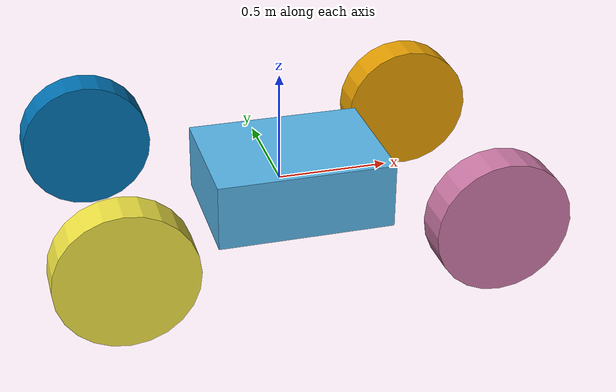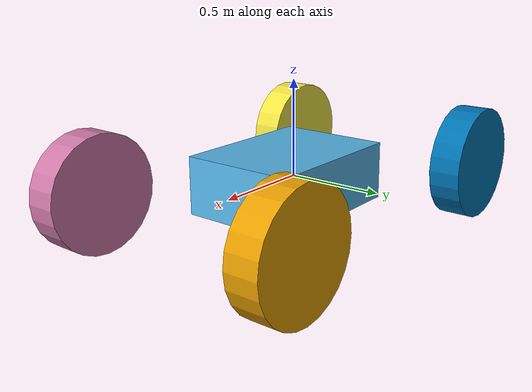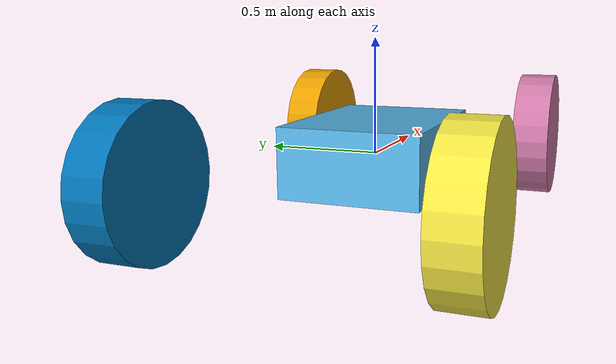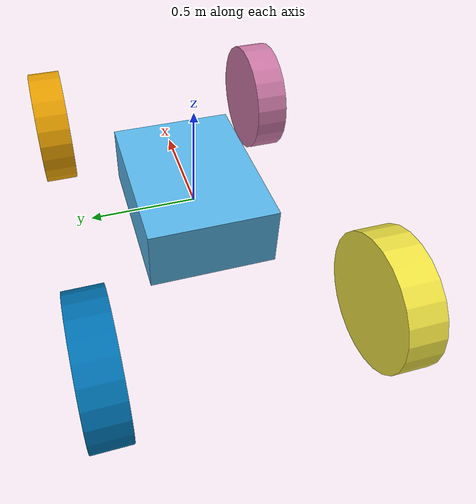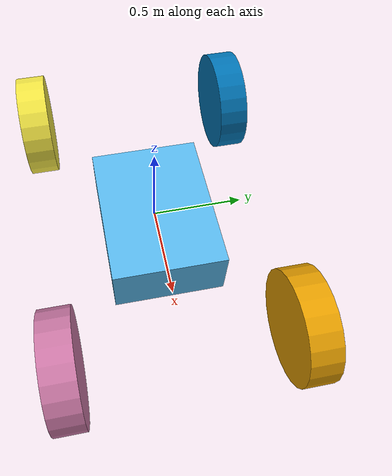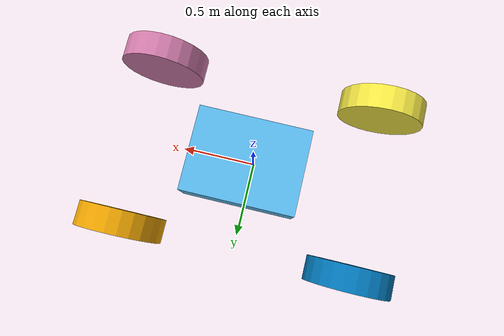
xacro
<!--
    使用 xacro 优化 URDF 版的小车底盘实现：

    实现思路:
    1.将一些常量、变量封装为 xacro:property
      比如:PI 值、小车底盘半径、离地间距、车轮半径、宽度 ....
    2.使用 宏 封装驱动轮以及支撑轮实现，调用相关宏生成驱动轮与支撑轮

-->

<!-- 根标签，必须声明 xmlns:xacro -->

<robot name="$(arg robot_name)" xmlns:xacro="http://www.ros.org/wiki/xacro">
    <!-- 封装变量、常量 -->
    <xacro:property name="PI" value="3.141"/>
    <!-- 宏:黑色设置 -->
    <material name="black">
        <color rgba="0.0 0.0 0.0 1.0" />
    </material>
    <material name="gray">
        <color rgba="0.0 0.0 0.0 0.5" />
    </material>

  <xacro:property name="PI" value="3.1415926835897931"/>

  <!-- base -->
  <xacro:property name="base_link_length" value="0.8"/>
  <xacro:property name="base_link_width" value="0.6"/>
  <xacro:property name="base_link_height" value="0.3"/>
  <xacro:property name="base_collision_height" value="0.0"/>
  <xacro:property name="base_mass" value="0.5"/>
  <xacro:property name="base_mass_ixx" value="343"/>
  <xacro:property name="base_mass_iyy" value="728"/>
  <xacro:property name="base_mass_izz" value="772"/>

  <!-- rear tyre -->
  <xacro:property name="rear_tyre_x" value="0.8"/>
  <xacro:property name="rear_tyre_y" value="0.6"/>
  <xacro:property name="rear_tyre_r" value="0.3"/>
  <xacro:property name="rear_tyre_length" value="0.165"/>
  <xacro:property name="rear_tyre_mass" value="20"/>
  <xacro:property name="rear_tyre_mass_ixx" value="0.5"/>
  <xacro:property name="rear_tyre_mass_iyy" value="0.9"/>
  <xacro:property name="rear_tyre_mass_izz" value="0.5"/>

  <!-- front tyre -->
  <xacro:property name="front_tyre_x" value="0.8"/>
  <xacro:property name="front_tyre_y" value="0.6"/>
  <xacro:property name="front_tyre_r" value="0.3"/>
  <xacro:property name="front_tyre_length" value="0.165"/>
  <xacro:property name="front_tyre_mass" value="20"/>
  <xacro:property name="front_tyre_mass_ixx" value="0.5"/>
  <xacro:property name="front_tyre_mass_iyy" value="0.9"/>
  <xacro:property name="front_tyre_mass_izz" value="0.5"/>

  <!-- steering -->
  <xacro:property name="str_angle" value="0.6"/>
  <xacro:property name="str_length" value="0.01"/>
  <xacro:property name="str_radius" value="0.1"/>
  <xacro:property name="str_mass" value="5"/>
  <xacro:property name="str_mass_ixx" value="0.012"/>
  <xacro:property name="str_mass_iyy" value="0.025"/>
  <xacro:property name="str_mass_izz" value="0.012"/>

<!--Car Body-->
  <link name="base_footprint">
    <visual>
      <origin xyz="0.0 0.0 0.0" rpy="0 0 0"/>
      <geometry>
        <sphere radius="0.05"/>
      </geometry>
    </visual>
  </link >

  <joint name="baselink2footprint" type="fixed">
    <parent link="base_footprint"/>
    <child link="base_link"/>
    <origin xyz="0 0 ${base_collision_height}" rpy="0 0 0"/>
  </joint>

  <link name="base_link">
    <collision>
      <origin xyz="0 0 ${base_collision_height}" rpy="0 0 0"/>
      <geometry>
        <box size="${base_link_length} ${base_link_width} ${base_link_height}"/>
      </geometry>
    </collision>

    <visual>
      <origin xyz="0.05 0 ${base_collision_height}" rpy="0 0 0"/>
      <geometry>
        <box size="${base_link_length} ${base_link_width} ${base_link_height}"/>
      </geometry>
    </visual>
  </link>

  <joint name="inertial_joint" type="fixed">
    <parent link="base_link"/>
    <child link="main_mass"/>
    <origin xyz="0 0 0" rpy="0 0 0"/>
  </joint>

  <link name="main_mass" type="fixed">
    <inertial>
      <origin xyz="0 0 0" rpy="0 0 0"/>
      <mass value="${base_mass}"/>
      <inertia
        ixx="${base_mass_ixx}"  ixy="0.000000"  ixz="0.000000"
        iyy="${base_mass_iyy}"  iyz="0.000000"
        izz="${base_mass_izz}"/>
    </inertial>
  </link>

  <!--Rear Right Wheel-->
  <joint name="right_back_wheel_joint" type="continuous">
    <parent link="base_link"/>
    <child link="right_back_wheel_link"/>
    <origin xyz="${-rear_tyre_x} ${-rear_tyre_y} 0" rpy="0 0 0"/>
    <axis xyz="0 1 0"/>
    <dynamics damping="0.1"/>
    <limit effort="100000" velocity="10000" />
    <joint_properties damping="0.0" friction="0.0" />
  </joint>

  <link name="right_back_wheel_link">
    <collision>
      <origin xyz="0 0 0" rpy="${PI/2} 0 0"/>
      <geometry>
        <cylinder length="${rear_tyre_length}" radius="${rear_tyre_r}"/>
      </geometry>
    </collision>

    <visual>
      <origin xyz="0 0 0" rpy="${PI/2} 0 0"/>
      <geometry>
        <cylinder length="${rear_tyre_length}" radius="${rear_tyre_r}"/>
      </geometry>
    </visual>
     <xacro:cylinder_inertial_matrix m="${rear_tyre_mass}" r="${rear_tyre_r}" h="${rear_tyre_length}" />
  </link>

  <!--Rear Left Wheel-->
  <joint name="left_back_wheel_joint" type="continuous">
    <parent link="base_link"/>
    <child link="left_back_wheel_link"/>
    <origin xyz="${-rear_tyre_x} ${rear_tyre_y} 0" rpy="0 0 0"/>
    <axis xyz="0 1 0"/>
    <dynamics damping="0.1"/>
    <limit effort="100000" velocity="10000" />
    <joint_properties damping="0.0" friction="0.0" />
  </joint>

  <link name="left_back_wheel_link">
    <collision>
      <origin xyz="0 0 0" rpy="${PI/2} 0 0"/>
      <geometry>
        <cylinder length="${rear_tyre_length}" radius="${rear_tyre_r}"/>
      </geometry>
    </collision>

    <visual>
      <origin xyz="0 0 0" rpy="${PI/2} 0 0"/>
      <geometry>
        <cylinder length="${rear_tyre_length}" radius="${rear_tyre_r}"/>
      </geometry>
    </visual>
    <xacro:cylinder_inertial_matrix m="${rear_tyre_mass}" r="${rear_tyre_r}" h="${rear_tyre_length}" />
  </link>

  <!--Front Right Steering-->
  <joint name="right_front_steering_joint" type="revolute">
    <parent link="base_link"/>
    <child link="right_front_steering_link"/>
    <origin xyz="${front_tyre_x} ${-front_tyre_y} 0" rpy="0 0 0"/>
    <axis xyz="0 0 1"/>
    <limit lower="${-str_angle}" upper="${str_angle}" effort="1000000.0" velocity="10000.0"/>
    <dynamics damping="10.0" friction="0.0"/>
  </joint>

  <link name="right_front_steering_link">
    <visual>
      <origin xyz="0 0 0" rpy="${PI/2} 0 0"/>
      <geometry>
        <cylinder length="${str_length}" radius="${str_radius}"/>
      </geometry>
    </visual>
    <xacro:cylinder_inertial_matrix m="${str_mass}" r="${str_radius}" h="${str_length}" />
  </link>

  <!--Front Right Wheel-->
  <joint name="right_front_wheel_joint" type="continuous">
    <parent link="right_front_steering_link"/>
    <child link="right_front_wheel_link"/>
    <origin xyz="0 0 0" rpy="0 0 0"/>
    <axis xyz="0 1 0"/>
    <dynamics damping="0.1"/>
    <limit effort="1000000" velocity="10000" />
    <joint_properties damping="0.0" friction="0.0" />
  </joint>

  <link name="right_front_wheel_link">
    <collision>
      <origin xyz="0 0 0" rpy="${PI/2} 0 0"/>
      <geometry>
        <cylinder length="${front_tyre_length}" radius="${front_tyre_r}"/>
      </geometry>
    </collision>

    <visual>
      <origin xyz="0 0 0" rpy="${PI/2} 0 0"/>
      <geometry>
        <cylinder length="${front_tyre_length}" radius="${front_tyre_r}"/>
      </geometry>
    </visual>
    <xacro:cylinder_inertial_matrix m="${front_tyre_mass}" r="${front_tyre_r}" h="${front_tyre_length}" />
  </link>

  <!--Front Left Steering-->
  <joint name="left_front_steering_joint" type="revolute">
    <parent link="base_link"/>
    <child link="left_front_steering_link"/>
    <origin xyz="${front_tyre_x} ${front_tyre_y} 0" rpy="0 0 0"/>
    <axis xyz="0 0 1"/>
    <limit lower="${-str_angle}" upper="${str_angle}" effort="1000000.0" velocity="10000.0"/>
    <dynamics damping="10.0" friction="0.0"/>
  </joint>

  <link name="left_front_steering_link">

    <visual>
      <origin xyz="0 0 0" rpy="${PI/2} 0 0"/>
      <geometry>
        <cylinder length="${str_length}" radius="${str_radius}"/>
      </geometry>
    </visual>
     <xacro:cylinder_inertial_matrix m="${str_mass}" r="${str_radius}" h="${str_length}" />
  </link>

  <!--Front Left Wheel-->
  <joint name="left_front_wheel_joint" type="continuous">
    <parent link="left_front_steering_link"/>
    <child link="left_front_wheel_link"/>
    <origin xyz="0 0 0" rpy="0 0 0"/>
    <axis xyz="0 1 0"/>
    <dynamics damping="0.1"/>
    <limit effort="1000000" velocity="10000" />
    <joint_properties damping="0.0" friction="0.0" />
  </joint>

  <link name="left_front_wheel_link">
    <collision>
      <origin xyz="0 0 0" rpy="${PI/2} 0 0"/>
      <geometry>
        <cylinder length="${front_tyre_length}" radius="${front_tyre_r}"/>
      </geometry>
    </collision>

    <visual>
      <origin xyz="0 0 0" rpy="${PI/2} 0 0"/>
      <geometry>
        <cylinder length="${front_tyre_length}" radius="${front_tyre_r}"/>
      </geometry>
    </visual>
     <xacro:cylinder_inertial_matrix m="${front_tyre_mass}" r="${front_tyre_r}" h="${front_tyre_length}" />
  </link>

  <transmission name="right_front_steering_transmission" type="SimpleTransmission">
      <type>transmission_interface/SimpleTransmission</type>
      <joint name="right_front_steering_joint">
        <hardwareInterface>hardware_interface/EffortJointInterface</hardwareInterface>
      </joint>
      <actuator name="right_front_steering_motor">
          <hardwareInterface>hardware_interface/EffortJointInterface</hardwareInterface>
          <mechanicalReduction>1</mechanicalReduction>
      </actuator>
  </transmission>
  <transmission name="left_front_steering_transmission" type="SimpleTransmission">
      <type>transmission_interface/SimpleTransmission</type>
      <joint name="left_front_steering_joint">
        <hardwareInterface>hardware_interface/EffortJointInterface</hardwareInterface>
      </joint>
      <actuator name="left_front_steering_motor">
          <hardwareInterface>hardware_interface/EffortJointInterface</hardwareInterface>
          <mechanicalReduction>1</mechanicalReduction>
      </actuator>
  </transmission>

  <transmission name="left_back_wheel_transmission" type="SimpleTransmission">
        <type>transmission_interface/SimpleTransmission</type>
        <joint name="left_back_wheel_joint">
          <hardwareInterface>hardware_interface/VelocityJointInterface</hardwareInterface>
        </joint>
        <actuator name="left_back_wheel_motor">
        <hardwareInterface>hardware_interface/VelocityJointInterface</hardwareInterface>
        <mechanicalReduction>1</mechanicalReduction>
        </actuator>
  </transmission>
  <transmission name="right_back_wheel_transmission" type="SimpleTransmission">
    <type>transmission_interface/SimpleTransmission</type>
    <joint name="right_back_wheel_joint">
      <hardwareInterface>hardware_interface/VelocityJointInterface</hardwareInterface>
    </joint>
    <actuator name="right_back_wheel_motor">
      <hardwareInterface>hardware_interface/VelocityJointInterface</hardwareInterface>
      <mechanicalReduction>1</mechanicalReduction>
    </actuator>
  </transmission>
      <!-- 控制器 -->
    <gazebo reference="left_front_wheel_joint">
        <mu1 value="2.0"/>
        <mu2 value="2.0"/>
        <kp  value="10000000.0" />
        <kd  value="1.0" />
        <fdir1 value="0 0 1"/>
    </gazebo>

    <gazebo reference="right_front_wheel_joint">
        <mu1 value="2.0"/>
        <mu2 value="2.0"/>
        <kp  value="10000000.0" />
        <kd  value="1.0" />
        <fdir1 value="0 0 1"/>
    <kd>1</kd>
    </gazebo>

    <gazebo reference="base_link">
        <mu1 value="0.0"/>
        <mu2 value="0.0"/>
        <kp  value="10000000.0" />
        <kd  value="1.0" />

    </gazebo>

    <gazebo reference="left_front_steering_joint">
        <mu1 value="2.0"/>
        <mu2 value="2.0"/>
        <kp  value="10000000.0" />
        <kd  value="1.0" />
        <fdir1 value="1 0 0"/>
        <material>Gazebo/Grey</material>
    </gazebo>

    <gazebo reference="left_back_wheel_joint">
        <mu1 value="2.0"/>
        <mu2 value="2.0"/>
        <kp  value="10000000.0" />
        <kd  value="1.0" />
        <fdir1 value="1 0 0"/>
    </gazebo>

    <gazebo reference="right_front_steering_joint">
        <mu1 value="2.0"/>
        <mu2 value="2.0"/>
        <kp  value="10000000.0" />
        <kd  value="1.0" />
        <fdir1 value="1 0 0"/>
        <material>Gazebo/Grey</material>
    </gazebo>

    <gazebo reference="right_back_wheel_joint">
        <mu1 value="2.0"/>
        <mu2 value="2.0"/>
        <kp  value="10000000.0" />
        <kd  value="1.0" />
        <fdir1 value="1 0 0"/>

    </gazebo>

    <gazebo>
    <plugin name="gazebo_ros_control" filename="libgazebo_ros_control.so">
        <robotNamespace>/$(arg robot_name)</robotNamespace>
        <robotParam>robot_description</robotParam>
        <robotSimType>gazebo_ros_control/DefaultRobotHWSim</robotSimType>
        <legacyModeNS>true</legacyModeNS>
    </plugin>
    </gazebo>

    <gazebo>
        <plugin name="joint_state_publisher" filename="libgazebo_ros_joint_state_publisher.so">
            <jointName>left_front_wheel_joint,
                        right_front_wheel_joint,
                        left_front_steering_joint,
                        right_front_steering_joint,
                        left_back_wheel_joint,
                        right_back_wheel_joint
            </jointName>
            <updateRate>50.0</updateRate>
            <robotNamespace>/$(arg robot_name)</robotNamespace>
            <alwaysOn>true</alwaysOn>
        </plugin>
    </gazebo>

</robot>
